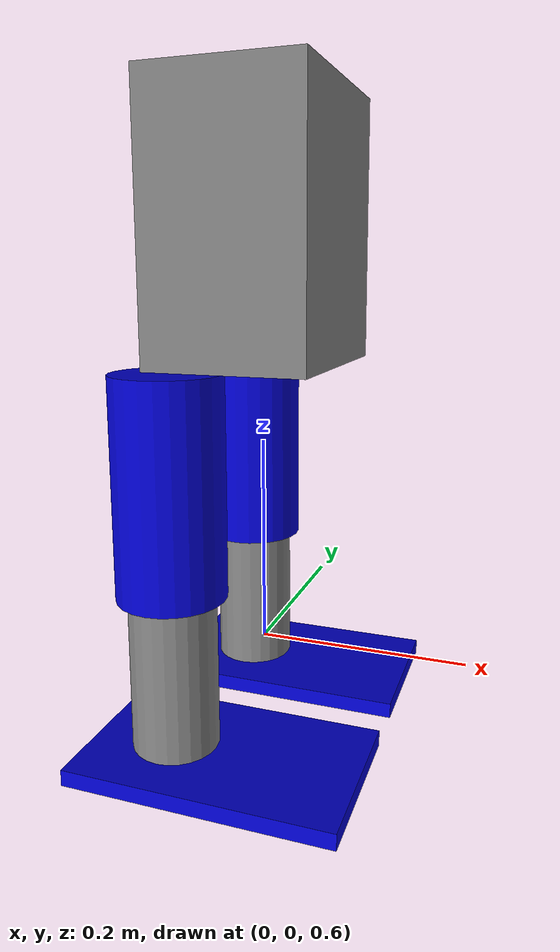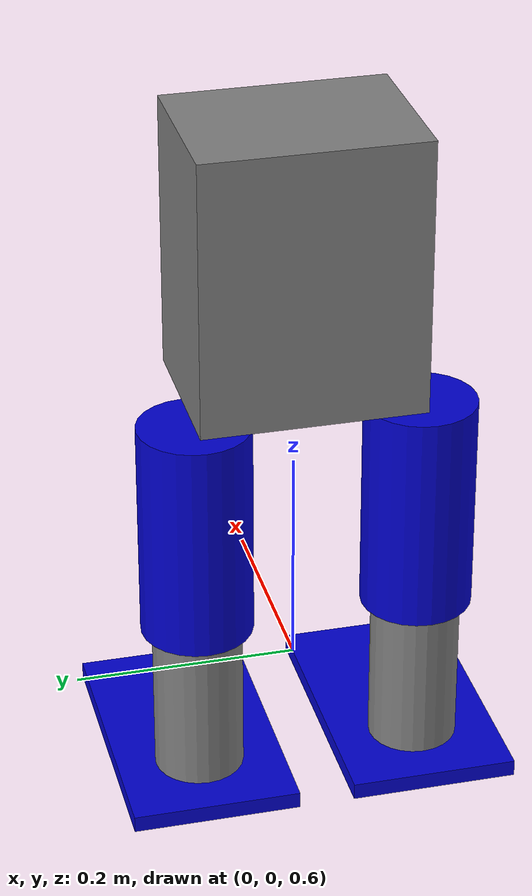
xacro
<?xml version="1.0"?>
<robot xmlns:xacro="http://www.ros.org/wiki/xacro" name="bipedal">

    <xacro:include filename="materials.xacro" />
    <xacro:include filename="parts/torso.xacro" />
    <xacro:include filename="parts/leg.xacro" />
    <xacro:include filename="bipedal.ros2_control.xacro" />
    <xacro:include filename="bipedal.gazebo.xacro" />

    <link name="base_footprint"/>

    <joint name="base_link_joint" type="fixed">
        <parent link="base_footprint"/>
        <child link="base_link"/>
        <origin xyz="0 0 0.5" rpy="0 0 0"/>
    </joint>

    <link name="base_link"/>

    <xacro:torso parent="base_link" />

    <xacro:leg prefix="left" parent="torso">
        <origin xyz="-0.05 0.1 -0.125" rpy="0 0 0"/>
    </xacro:leg>

    <xacro:leg prefix="right" parent="torso">
        <origin xyz="-0.05 -0.1 -0.125" rpy="0 0 0"/>
    </xacro:leg>

</robot>

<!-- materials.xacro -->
<robot xmlns:xacro="http://www.ros.org/wiki/xacro">

    <material name="blue">
        <color rgba="0.0 0.0 0.8 1.0"/>
    </material>

    <material name="grey">
        <color rgba="0.5 0.5 0.5 1.0"/>
    </material>

    <material name="white">
        <color rgba="1.0 1.0 1.0 1.0"/>
    </material>

</robot>

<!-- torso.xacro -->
<robot xmlns:xacro="http://www.ros.org/wiki/xacro">
<xacro:macro name="torso" params="parent">
<joint name="torso_joint" type="fixed">
<parent link="${parent}"/>
<child link="torso"/>
<origin xyz="0 0 0.5" rpy="0 0 0"/>
</joint>
<link name="torso">
<visual>
<geometry>
<box size="0.15 0.2 0.25"/>
</geometry>
<material name="grey"/>
</visual>
<collision>
<geometry>
<box size="0.15 0.2 0.25"/>
</geometry>
</collision>
<inertial>
<!-- CHANGE: Increased mass from 2.5 to 6.0 to lower center of mass -->
<mass value="6.0"/>
<inertia ixx="0.1" ixy="0.0" ixz="0.0" iyy="0.1" iyz="0.0" izz="0.1"/>
</inertial>
</link>
<gazebo reference="torso">
<sensor name="imu_sensor" type="imu">
<always_on>1</always_on>
<update_rate>100</update_rate>
<visualize>true</visualize>
<topic>/bipedal/imu</topic>
<imu>
<angular_velocity>
<x>
<noise type="gaussian">
<mean>0.0</mean>
<stddev>2e-4</stddev>
</noise>
</x>
<y>
<noise type="gaussian">
<mean>0.0</mean>
<stddev>2e-4</stddev>
</noise>
</y>
<z>
<noise type="gaussian">
<mean>0.0</mean>
<stddev>2e-4</stddev>
</noise>
</z>
</angular_velocity>
<linear_acceleration>
<x>
<noise type="gaussian">
<mean>0.0</mean>
<stddev>1.7e-2</stddev>
</noise>
</x>
<y>
<noise type="gaussian">
<mean>0.0</mean>
<stddev>1.7e-2</stddev>
</noise>
</y>
<z>
<noise type="gaussian">
<mean>0.0</mean>
<stddev>1.7e-2</stddev>
</noise>
</z>
</linear_acceleration>
</imu>
</sensor>
</gazebo>
<link name="imu_link"/>
<joint name="imu_joint" type="fixed">
<parent link="torso"/>
<child link="imu_link"/>
<origin xyz="0 0 0" rpy="0 0 0"/>
</joint>
</xacro:macro>
</robot>

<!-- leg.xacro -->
<robot xmlns:xacro="http://www.ros.org/wiki/xacro">

    <xacro:macro name="leg" params="prefix parent *origin">
        <joint name="${prefix}_hip_joint" type="revolute">
            <parent link="${parent}"/>
            <child link="${prefix}_thigh"/>
            <xacro:insert_block name="origin"/>
            <axis xyz="0 1 0"/>
            <limit lower="-1.57" upper="1.57" effort="100" velocity="5"/>
        </joint>

        <link name="${prefix}_thigh">
            <visual>
                <geometry>
                        <cylinder radius="0.05" length="0.2"/>
                </geometry>
                    <origin xyz="0 0 -0.1" rpy="0 0 0"/>
                <material name="blue"/>
            </visual>
            <collision>
                <geometry>
                        <cylinder radius="0.05" length="0.2"/>
                </geometry>
                    <origin xyz="0 0 -0.1" rpy="0 0 0"/>
            </collision>
            <inertial>
                <!-- CHANGE: Reduced mass from 3.5 to 2.0 -->
                <mass value="4.0"/>
                <inertia ixx="0.01" ixy="0.0" ixz="0.0" iyy="0.01" iyz="0.0" izz="0.01"/>
            </inertial>
        </link>

        <joint name="${prefix}_knee_joint" type="revolute">
            <parent link="${prefix}_thigh"/>
            <child link="${prefix}_shin"/>
                <origin xyz="0 0 -0.2" rpy="0 0 0"/>
            <axis xyz="0 1 0"/>
            <limit lower="0" upper="1.57" effort="100" velocity="5"/>
        </joint>

        <link name="${prefix}_shin">
            <visual>
                <geometry>
                        <cylinder radius="0.04" length="0.15"/>
                </geometry>
                    <origin xyz="0 0 -0.075" rpy="0 0 0"/>
                <material name="grey"/>
            </visual>
            <collision>
                <geometry>
                        <cylinder radius="0.04" length="0.15"/>
                </geometry>leg
                    <origin xyz="0 0 -0.075" rpy="0 0 0"/>
            </collision>
            <inertial>
                <!-- Mass of 1.5 is okay here -->
                <mass value="3.0"/>
                <inertia ixx="0.01" ixy="0.0" ixz="0.0" iyy="0.01" iyz="0.0" izz="0.01"/>
            </inertial>
        </link>

        <!-- CRITICAL CHANGE: Replaced fixed joint with a revolute ankle joint -->
        <joint name="${prefix}_ankle_joint" type="revolute">
            <parent link="${prefix}_shin"/>
            <child link="${prefix}_foot"/>
            <origin xyz="0 0 -0.15" rpy="0 0 0"/>
            <axis xyz="0 1 0"/>
            <!-- Limit ankle motion to about +/- 30 degrees -->
            <limit lower="-0.52" upper="0.52" effort="100" velocity="5"/>
        </joint>

        <link name="${prefix}_foot">
            <visual>
                <geometry>
                        <!-- CHANGE: Increased foot length from 0.2 to 0.25 for stability -->
                        <box size="0.15 0.25 0.015"/>
                </geometry>
                    <origin xyz="0.05 0 0" rpy="0 0 1.570796"/>
                <material name="blue"/>
            </visual>
            <collision>
                <geometry>
                       <!-- CHANGE: Increased foot length from 0.2 to 0.25 for stability -->
                       <box size="0.15 0.25 0.015"/>
                </geometry>
                     <origin xyz="0.05 0 0" rpy="0 0 1.570796"/>
            </collision>
             <inertial>
                <!-- Mass of 1.5 is okay here -->
                <mass value="3.5"/>
                <inertia ixx="0.001" ixy="0.0" ixz="0.0" iyy="0.001" iyz="0.0" izz="0.001"/>
            </inertial>
        </link>

        <!-- Add a fixed joint for the foot sensor/contact point if needed later -->
        <joint name="${prefix}_foot_contact_joint" type="fixed">
          <parent link="${prefix}_foot"/>
          <child link="${prefix}_foot_contact"/>
          <origin xyz="0 0 0" rpy="0 0 0"/>
        </joint>
        <link name="${prefix}_foot_contact"/>

    </xacro:macro>

</robot>
